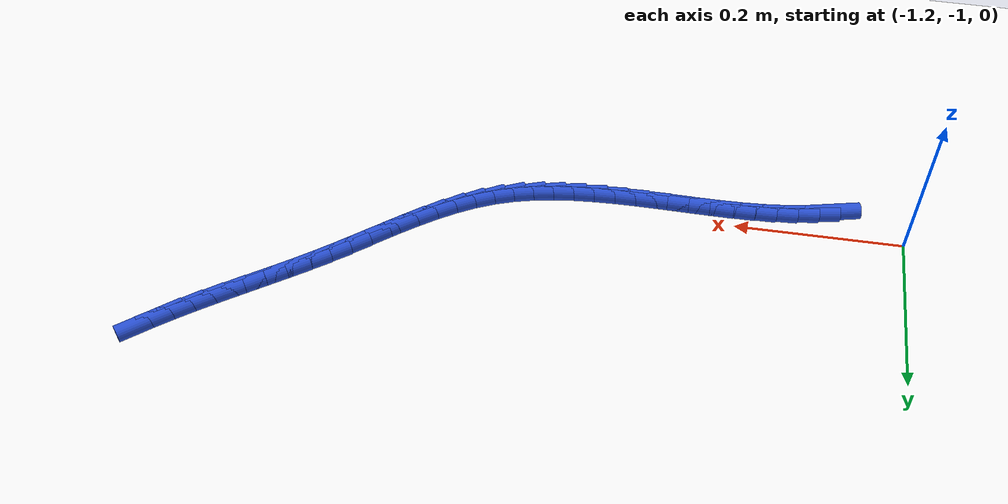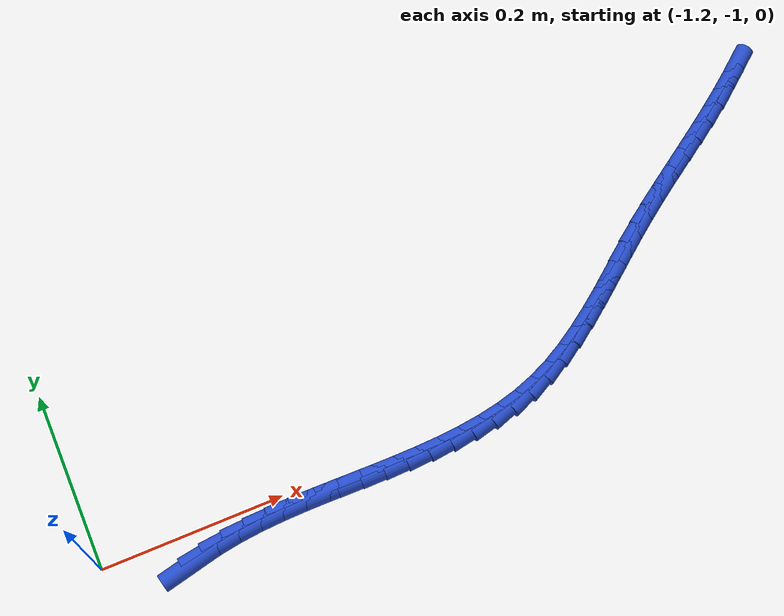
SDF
<sdf version="1.6">
 <world name="default">
  <model name="ground_plane">
   <static>1</static>
   <link name="link">
    <collision name="collision">
     <geometry><plane><normal>0 0 1</normal><size>100 100</size></plane></geometry>
     <surface><friction><ode><mu>100</mu><mu2>50</mu2></ode></friction></surface>
    </collision>
    <visual name="visual">
     <cast_shadows>0</cast_shadows>
     <geometry><plane><normal>0 0 1</normal><size>100 100</size></plane></geometry>
     <material>
      <script><uri>file://media/materials/scripts/gazebo.material</uri><name>Gazebo/WhiteGlow</name></script>
     </material>
    </visual>
   </link>
  </model>
  <model name="line">
   <link name="link_203">
    <pose>-1.10755397080145 -1.0308218932978706 0.01 0 1.57 0.2261650845277783</pose>
    <collision name="collision">
     <geometry><cylinder><radius>0.01</radius><length>0.08</length></cylinder></geometry>
    </collision>
    <visual name="visual">
     <material>
      <script><name>Gazebo/Blue</name><uri>file://media/materials/scripts/gazebo.material</uri></script>
     </material>
     <geometry><cylinder><radius>0.01</radius><length>0.08</length></cylinder></geometry>
    </visual>
   </link>
   <link name="link_204">
    <pose>-1.0828694202632745 -1.0251419334401455 0.01 0 1.57 0.15838419718555602</pose>
    <collision name="collision">
     <geometry><cylinder><radius>0.01</radius><length>0.08</length></cylinder></geometry>
    </collision>
    <visual name="visual">
     <material>
      <script><name>Gazebo/Blue</name><uri>file://media/materials/scripts/gazebo.material</uri></script>
     </material>
     <geometry><cylinder><radius>0.01</radius><length>0.08</length></cylinder></geometry>
    </visual>
   </link>
   <link name="link_205">
    <pose>-1.058084526162288 -1.0211832403915984 0.01 0 1.57 0.10123724943054842</pose>
    <collision name="collision">
     <geometry><cylinder><radius>0.01</radius><length>0.08</length></cylinder></geometry>
    </collision>
    <visual name="visual">
     <material>
      <script><name>Gazebo/Blue</name><uri>file://media/materials/scripts/gazebo.material</uri></script>
     </material>
     <geometry><cylinder><radius>0.01</radius><length>0.08</length></cylinder></geometry>
    </visual>
   </link>
   <link name="link_206">
    <pose>-1.0331551276622597 -1.018650799093043 0.01 0 1.57 0.05581349731493357</pose>
    <collision name="collision">
     <geometry><cylinder><radius>0.01</radius><length>0.08</length></cylinder></geometry>
    </collision>
    <visual name="visual">
     <material>
      <script><name>Gazebo/Blue</name><uri>file://media/materials/scripts/gazebo.material</uri></script>
     </material>
     <geometry><cylinder><radius>0.01</radius><length>0.08</length></cylinder></geometry>
    </visual>
   </link>
   <link name="link_207">
    <pose>-1.0080368834223206 -1.0172474044729347 0.01 0 1.57 0.022541149677616588</pose>
    <collision name="collision">
     <geometry><cylinder><radius>0.01</radius><length>0.08</length></cylinder></geometry>
    </collision>
    <visual name="visual">
     <material>
      <script><name>Gazebo/Blue</name><uri>file://media/materials/scripts/gazebo.material</uri></script>
     </material>
     <geometry><cylinder><radius>0.01</radius><length>0.08</length></cylinder></geometry>
    </visual>
   </link>
   <link name="link_208">
    <pose>-0.9826854679008781 -1.016675857616208 0.01 0 1.57 0.0009865271642466816</pose>
    <collision name="collision">
     <geometry><cylinder><radius>0.01</radius><length>0.08</length></cylinder></geometry>
    </collision>
    <visual name="visual">
     <material>
      <script><name>Gazebo/Blue</name><uri>file://media/materials/scripts/gazebo.material</uri></script>
     </material>
     <geometry><cylinder><radius>0.01</radius><length>0.08</length></cylinder></geometry>
    </visual>
   </link>
   <link name="link_209">
    <pose>-0.9570864370149903 -1.016650603468668 0.01 0 1.57 -0.01052892408527775</pose>
    <collision name="collision">
     <geometry><cylinder><radius>0.01</radius><length>0.08</length></cylinder></geometry>
    </collision>
    <visual name="visual">
     <material>
      <script><name>Gazebo/Blue</name><uri>file://media/materials/scripts/gazebo.material</uri></script>
     </material>
     <geometry><cylinder><radius>0.01</radius><length>0.08</length></cylinder></geometry>
    </visual>
   </link>
   <link name="link_210">
    <pose>-0.9313173412343911 -1.0169219343483837 0.01 0 1.57 -0.012578075976326115</pose>
    <collision name="collision">
     <geometry><cylinder><radius>0.01</radius><length>0.08</length></cylinder></geometry>
    </collision>
    <visual name="visual">
     <material>
      <script><name>Gazebo/Blue</name><uri>file://media/materials/scripts/gazebo.material</uri></script>
     </material>
     <geometry><cylinder><radius>0.01</radius><length>0.08</length></cylinder></geometry>
    </visual>
   </link>
   <link name="link_211">
    <pose>-0.9054733774641378 -1.017247018832051 0.01 0 1.57 -0.0052667026756854736</pose>
    <collision name="collision">
     <geometry><cylinder><radius>0.01</radius><length>0.08</length></cylinder></geometry>
    </collision>
    <visual name="visual">
     <material>
      <script><name>Gazebo/Blue</name><uri>file://media/materials/scripts/gazebo.material</uri></script>
     </material>
     <geometry><cylinder><radius>0.01</radius><length>0.08</length></cylinder></geometry>
    </visual>
   </link>
   <link name="link_212">
    <pose>-0.8796497426092902 -1.017383025496364 0.01 0 1.57 0.011509579009620359</pose>
    <collision name="collision">
     <geometry><cylinder><radius>0.01</radius><length>0.08</length></cylinder></geometry>
    </collision>
    <visual name="visual">
     <material>
      <script><name>Gazebo/Blue</name><uri>file://media/materials/scripts/gazebo.material</uri></script>
     </material>
     <geometry><cylinder><radius>0.01</radius><length>0.08</length></cylinder></geometry>
    </visual>
   </link>
   <link name="link_213">
    <pose>-0.853941633574905 -1.0170871229180176 0.01 0 1.57 0.038049969312778834</pose>
    <collision name="collision">
     <geometry><cylinder><radius>0.01</radius><length>0.08</length></cylinder></geometry>
    </collision>
    <visual name="visual">
     <material>
      <script><name>Gazebo/Blue</name><uri>file://media/materials/scripts/gazebo.material</uri></script>
     </material>
     <geometry><cylinder><radius>0.01</radius><length>0.08</length></cylinder></geometry>
    </visual>
   </link>
   <link name="link_214">
    <pose>-0.8284442472660426 -1.016116479673707 0.01 0 1.57 0.07481466302880874</pose>
    <collision name="collision">
     <geometry><cylinder><radius>0.01</radius><length>0.08</length></cylinder></geometry>
    </collision>
    <visual name="visual">
     <material>
      <script><name>Gazebo/Blue</name><uri>file://media/materials/scripts/gazebo.material</uri></script>
     </material>
     <geometry><cylinder><radius>0.01</radius><length>0.08</length></cylinder></geometry>
    </visual>
   </link>
   <link name="link_215">
    <pose>-0.8032527805877607 -1.0142282643401273 0.01 0 1.57 0.12236166877194048</pose>
    <collision name="collision">
     <geometry><cylinder><radius>0.01</radius><length>0.08</length></cylinder></geometry>
    </collision>
    <visual name="visual">
     <material>
      <script><name>Gazebo/Blue</name><uri>file://media/materials/scripts/gazebo.material</uri></script>
     </material>
     <geometry><cylinder><radius>0.01</radius><length>0.08</length></cylinder></geometry>
    </visual>
   </link>
   <link name="link_216">
    <pose>-0.7784624304451169 -1.0111796454939725 0.01 0 1.57 0.18123801695461444</pose>
    <collision name="collision">
     <geometry><cylinder><radius>0.01</radius><length>0.08</length></cylinder></geometry>
    </collision>
    <visual name="visual">
     <material>
      <script><name>Gazebo/Blue</name><uri>file://media/materials/scripts/gazebo.material</uri></script>
     </material>
     <geometry><cylinder><radius>0.01</radius><length>0.08</length></cylinder></geometry>
    </visual>
   </link>
   <link name="link_217">
    <pose>-0.754168393743171 -1.0067277917119386 0.01 0 1.57 0.251808085172388</pose>
    <collision name="collision">
     <geometry><cylinder><radius>0.01</radius><length>0.08</length></cylinder></geometry>
    </collision>
    <visual name="visual">
     <material>
      <script><name>Gazebo/Blue</name><uri>file://media/materials/scripts/gazebo.material</uri></script>
     </material>
     <geometry><cylinder><radius>0.01</radius><length>0.08</length></cylinder></geometry>
    </visual>
   </link>
   <link name="link_218">
    <pose>-0.7304658673869806 -1.0006298715707196 0.01 0 1.57 0.3340121733219703</pose>
    <collision name="collision">
     <geometry><cylinder><radius>0.01</radius><length>0.08</length></cylinder></geometry>
    </collision>
    <visual name="visual">
     <material>
      <script><name>Gazebo/Blue</name><uri>file://media/materials/scripts/gazebo.material</uri></script>
     </material>
     <geometry><cylinder><radius>0.01</radius><length>0.08</length></cylinder></geometry>
    </visual>
   </link>
   <link name="link_219">
    <pose>-0.7074500457746044 -0.9926430602737316 0.01 0 1.57 0.4224757833816929</pose>
    <collision name="collision">
     <geometry><cylinder><radius>0.01</radius><length>0.08</length></cylinder></geometry>
    </collision>
    <visual name="visual">
     <material>
      <script><name>Gazebo/Blue</name><uri>file://media/materials/scripts/gazebo.material</uri></script>
     </material>
     <geometry><cylinder><radius>0.01</radius><length>0.08</length></cylinder></geometry>
    </visual>
   </link>
   <link name="link_220">
    <pose>-0.6851762341115768 -0.9826299715758838 0.01 0 1.57 0.49980424651290617</pose>
    <collision name="collision">
     <geometry><cylinder><radius>0.01</radius><length>0.08</length></cylinder></geometry>
    </collision>
    <visual name="visual">
     <material>
      <script><name>Gazebo/Blue</name><uri>file://media/materials/scripts/gazebo.material</uri></script>
     </material>
     <geometry><cylinder><radius>0.01</radius><length>0.08</length></cylinder></geometry>
    </visual>
   </link>
   <link name="link_221">
    <pose>-0.6635587843611948 -0.9708257989899222 0.01 0 1.57 0.5621446014339773</pose>
    <collision name="collision">
     <geometry><cylinder><radius>0.01</radius><length>0.08</length></cylinder></geometry>
    </collision>
    <visual name="visual">
     <material>
      <script><name>Gazebo/Blue</name><uri>file://media/materials/scripts/gazebo.material</uri></script>
     </material>
     <geometry><cylinder><radius>0.01</radius><length>0.08</length></cylinder></geometry>
    </visual>
   </link>
   <link name="link_222">
    <pose>-0.6424809298646755 -0.957547991452402 0.01 0 1.57 0.6099286460206631</pose>
    <collision name="collision">
     <geometry><cylinder><radius>0.01</radius><length>0.08</length></cylinder></geometry>
    </collision>
    <visual name="visual">
     <material>
      <script><name>Gazebo/Blue</name><uri>file://media/materials/scripts/gazebo.material</uri></script>
     </material>
     <geometry><cylinder><radius>0.01</radius><length>0.08</length></cylinder></geometry>
    </visual>
   </link>
   <link name="link_223">
    <pose>-0.6218259039632387 -0.9431139978998807 0.01 0 1.57 0.6438472232946232</pose>
    <collision name="collision">
     <geometry><cylinder><radius>0.01</radius><length>0.08</length></cylinder></geometry>
    </collision>
    <visual name="visual">
     <material>
      <script><name>Gazebo/Blue</name><uri>file://media/materials/scripts/gazebo.material</uri></script>
     </material>
     <geometry><cylinder><radius>0.01</radius><length>0.08</length></cylinder></geometry>
    </visual>
   </link>
   <link name="link_224">
    <pose>-0.6014769399981014 -0.9278412672689128 0.01 0 1.57 0.6645654324586304</pose>
    <collision name="collision">
     <geometry><cylinder><radius>0.01</radius><length>0.08</length></cylinder></geometry>
    </collision>
    <visual name="visual">
     <material>
      <script><name>Gazebo/Blue</name><uri>file://media/materials/scripts/gazebo.material</uri></script>
     </material>
     <geometry><cylinder><radius>0.01</radius><length>0.08</length></cylinder></geometry>
    </visual>
   </link>
   <link name="link_225">
    <pose>-0.5813172713104832 -0.9120472484960555 0.01 0 1.57 0.6725559633341115</pose>
    <collision name="collision">
     <geometry><cylinder><radius>0.01</radius><length>0.08</length></cylinder></geometry>
    </collision>
    <visual name="visual">
     <material>
      <script><name>Gazebo/Blue</name><uri>file://media/materials/scripts/gazebo.material</uri></script>
     </material>
     <geometry><cylinder><radius>0.01</radius><length>0.08</length></cylinder></geometry>
    </visual>
   </link>
   <link name="link_226">
    <pose>-0.5612301312416018 -0.896049390517864 0.01 0 1.57 0.668015633531151</pose>
    <collision name="collision">
     <geometry><cylinder><radius>0.01</radius><length>0.08</length></cylinder></geometry>
    </collision>
    <visual name="visual">
     <material>
      <script><name>Gazebo/Blue</name><uri>file://media/materials/scripts/gazebo.material</uri></script>
     </material>
     <geometry><cylinder><radius>0.01</radius><length>0.08</length></cylinder></geometry>
    </visual>
   </link>
   <link name="link_227">
    <pose>-0.5410987531326749 -0.8801651422708939 0.01 0 1.57 0.6509425969817296</pose>
    <collision name="collision">
     <geometry><cylinder><radius>0.01</radius><length>0.08</length></cylinder></geometry>
    </collision>
    <visual name="visual">
     <material>
      <script><name>Gazebo/Blue</name><uri>file://media/materials/scripts/gazebo.material</uri></script>
     </material>
     <geometry><cylinder><radius>0.01</radius><length>0.08</length></cylinder></geometry>
    </visual>
   </link>
   <link name="link_228">
    <pose>-0.5208073999569462 -0.8647093646546319 0.01 0 1.57 0.6281571295715337</pose>
    <collision name="collision">
     <geometry><cylinder><radius>0.01</radius><length>0.08</length></cylinder></geometry>
    </collision>
    <visual name="visual">
     <material>
      <script><name>Gazebo/Blue</name><uri>file://media/materials/scripts/gazebo.material</uri></script>
     </material>
     <geometry><cylinder><radius>0.01</radius><length>0.08</length></cylinder></geometry>
    </visual>
   </link>
   <link name="link_229">
    <pose>-0.5003098842640125 -0.8498221018596825 0.01 0 1.57 0.6112267311432206</pose>
    <collision name="collision">
     <geometry><cylinder><radius>0.01</radius><length>0.08</length></cylinder></geometry>
    </collision>
    <visual name="visual">
     <material>
      <script><name>Gazebo/Blue</name><uri>file://media/materials/scripts/gazebo.material</uri></script>
     </material>
     <geometry><cylinder><radius>0.01</radius><length>0.08</length></cylinder></geometry>
    </visual>
   </link>
   <link name="link_230">
    <pose>-0.4796725438094451 -0.8353605597445548 0.01 0 1.57 0.6013927028003506</pose>
    <collision name="collision">
     <geometry><cylinder><radius>0.01</radius><length>0.08</length></cylinder></geometry>
    </collision>
    <visual name="visual">
     <material>
      <script><name>Gazebo/Blue</name><uri>file://media/materials/scripts/gazebo.material</uri></script>
     </material>
     <geometry><cylinder><radius>0.01</radius><length>0.08</length></cylinder></geometry>
    </visual>
   </link>
   <link name="link_231">
    <pose>-0.4589719698453867 -0.8211561714367149 0.01 0 1.57 0.598777871963219</pose>
    <collision name="collision">
     <geometry><cylinder><radius>0.01</radius><length>0.08</length></cylinder></geometry>
    </collision>
    <visual name="visual">
     <material>
      <script><name>Gazebo/Blue</name><uri>file://media/materials/scripts/gazebo.material</uri></script>
     </material>
     <geometry><cylinder><radius>0.01</radius><length>0.08</length></cylinder></geometry>
    </visual>
   </link>
   <link name="link_232">
    <pose>-0.43828475362398245 -0.8070403700636312 0.01 0 1.57 0.6034455709606006</pose>
    <collision name="collision">
     <geometry><cylinder><radius>0.01</radius><length>0.08</length></cylinder></geometry>
    </collision>
    <visual name="visual">
     <material>
      <script><name>Gazebo/Blue</name><uri>file://media/materials/scripts/gazebo.material</uri></script>
     </material>
     <geometry><cylinder><radius>0.01</radius><length>0.08</length></cylinder></geometry>
    </visual>
   </link>
   <link name="link_233">
    <pose>-0.4176874863973745 -0.7928445887527695 0.01 0 1.57 0.6154021261433259</pose>
    <collision name="collision">
     <geometry><cylinder><radius>0.01</radius><length>0.08</length></cylinder></geometry>
    </collision>
    <visual name="visual">
     <material>
      <script><name>Gazebo/Blue</name><uri>file://media/materials/scripts/gazebo.material</uri></script>
     </material>
     <geometry><cylinder><radius>0.01</radius><length>0.08</length></cylinder></geometry>
    </visual>
   </link>
   <link name="link_234">
    <pose>-0.3972567594177082 -0.7784002606315985 0.01 0 1.57 0.6345802235583318</pose>
    <collision name="collision">
     <geometry><cylinder><radius>0.01</radius><length>0.08</length></cylinder></geometry>
    </collision>
    <visual name="visual">
     <material>
      <script><name>Gazebo/Blue</name><uri>file://media/materials/scripts/gazebo.material</uri></script>
     </material>
     <geometry><cylinder><radius>0.01</radius><length>0.08</length></cylinder></geometry>
    </visual>
   </link>
   <link name="link_235">
    <pose>-0.3770690985710181 -0.7635390456126426 0.01 0 1.57 0.6588820471939955</pose>
    <collision name="collision">
     <geometry><cylinder><radius>0.01</radius><length>0.08</length></cylinder></geometry>
    </collision>
    <visual name="visual">
     <material>
      <script><name>Gazebo/Blue</name><uri>file://media/materials/scripts/gazebo.material</uri></script>
     </material>
     <geometry><cylinder><radius>0.01</radius><length>0.08</length></cylinder></geometry>
    </visual>
   </link>
   <link name="link_236">
    <pose>-0.35718635040771285 -0.7481435329671885 0.01 0 1.57 0.6838082312422902</pose>
    <collision name="collision">
     <geometry><cylinder><radius>0.01</radius><length>0.08</length></cylinder></geometry>
    </collision>
    <visual name="visual">
     <material>
      <script><name>Gazebo/Blue</name><uri>file://media/materials/scripts/gazebo.material</uri></script>
     </material>
     <geometry><cylinder><radius>0.01</radius><length>0.08</length></cylinder></geometry>
    </visual>
   </link>
  </model>
 </world>
</sdf>
